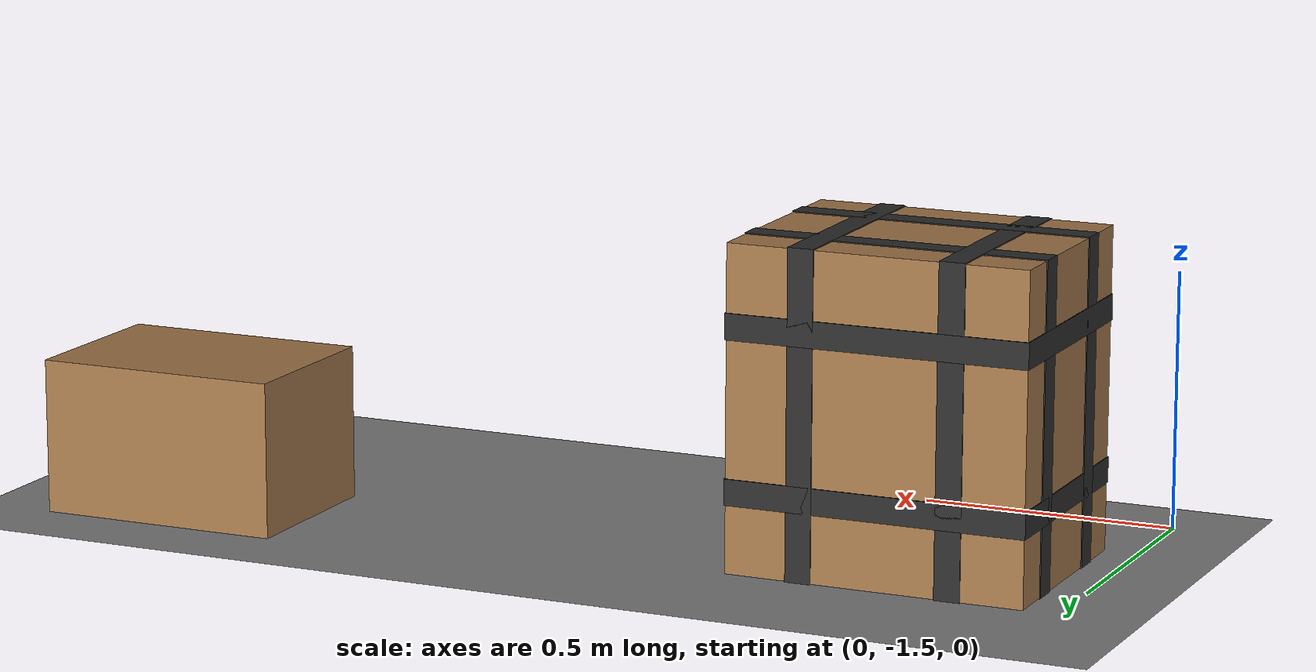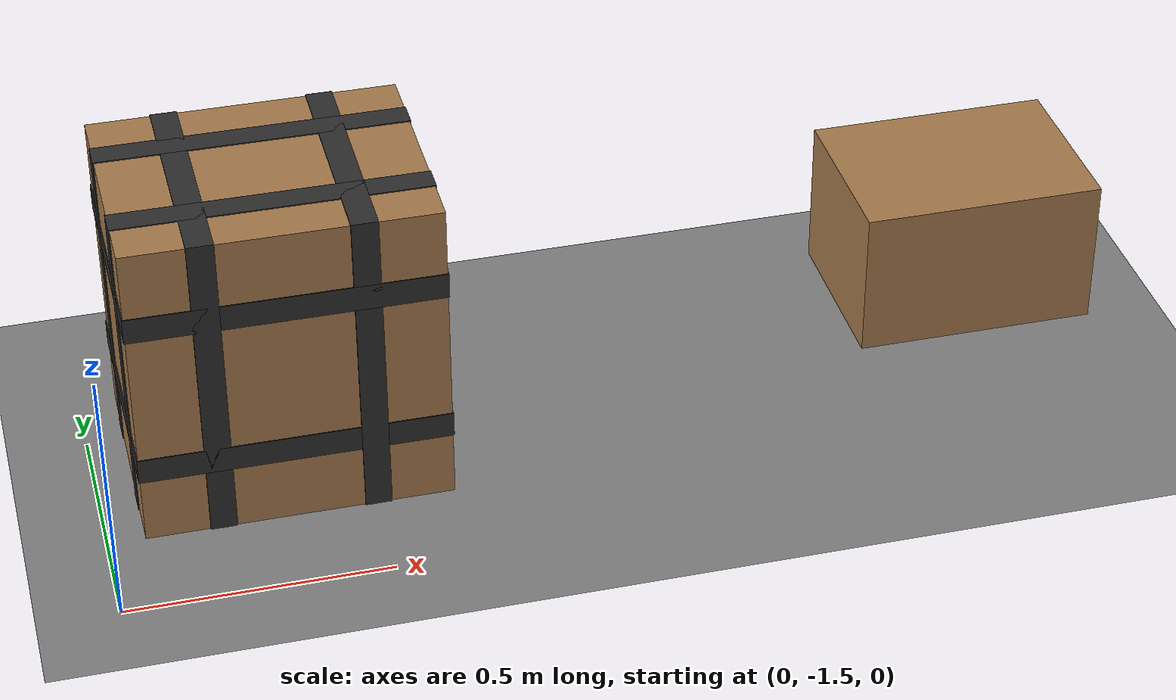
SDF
<sdf version="1.9">
 <world name="ecps295_lowbox_s15_monitor">
  <model name="ground_plane">
   <static>true</static>
   <link name="link">
    <collision name="collision">
     <geometry><plane><normal>0 0 1</normal><size>50 50</size></plane></geometry>
    </collision>
    <visual name="visual">
     <geometry><plane><normal>0 0 1</normal><size>50 50</size></plane></geometry>
     <material><ambient>0.5 0.5 0.5 1</ambient><diffuse>0.5 0.5 0.5 1</diffuse></material>
    </visual>
   </link>
  </model>
  <model name="lb0">
   <static>true</static>
   <pose>0.36 -1.08 0.309 0 0 0</pose>
   <link name="link">
    <collision name="c"><geometry><box><size>0.58 0.45 0.62</size></box></geometry></collision>
    <visual name="v">
     <geometry><box><size>0.58 0.45 0.62</size></box></geometry>
     <material><ambient>0.65 0.48 0.30 1</ambient><diffuse>0.65 0.48 0.30 1</diffuse></material>
    </visual>
    <visual name="tape_ring0">
     <pose>0.000 0.000 -0.155 0 0 0</pose>
     <geometry><box><size>0.584 0.454 0.050</size></box></geometry>
     <material><ambient>0.18 0.18 0.18 1</ambient><diffuse>0.18 0.18 0.18 1</diffuse></material>
    </visual>
    <visual name="tape_bx0">
     <pose>-0.145 0.000 0.000 0 0 0</pose>
     <geometry><box><size>0.050 0.454 0.624</size></box></geometry>
     <material><ambient>0.18 0.18 0.18 1</ambient><diffuse>0.18 0.18 0.18 1</diffuse></material>
    </visual>
    <visual name="tape_by0">
     <pose>0.000 -0.113 0.000 0 0 0</pose>
     <geometry><box><size>0.584 0.050 0.624</size></box></geometry>
     <material><ambient>0.18 0.18 0.18 1</ambient><diffuse>0.18 0.18 0.18 1</diffuse></material>
    </visual>
    <visual name="tape_ring1">
     <pose>0.000 0.000 0.155 0 0 0</pose>
     <geometry><box><size>0.584 0.454 0.050</size></box></geometry>
     <material><ambient>0.18 0.18 0.18 1</ambient><diffuse>0.18 0.18 0.18 1</diffuse></material>
    </visual>
    <visual name="tape_bx1">
     <pose>0.145 0.000 0.000 0 0 0</pose>
     <geometry><box><size>0.050 0.454 0.624</size></box></geometry>
     <material><ambient>0.18 0.18 0.18 1</ambient><diffuse>0.18 0.18 0.18 1</diffuse></material>
    </visual>
    <visual name="tape_by1">
     <pose>0.000 0.113 0.000 0 0 0</pose>
     <geometry><box><size>0.584 0.050 0.624</size></box></geometry>
     <material><ambient>0.18 0.18 0.18 1</ambient><diffuse>0.18 0.18 0.18 1</diffuse></material>
    </visual>
   </link>
  </model>
  <model name="lb5">
   <static>true</static>
   <pose>1.77 -0.89 0.149 0 0 0</pose>
   <link name="link">
    <collision name="c"><geometry><box><size>0.48 0.35 0.3</size></box></geometry></collision>
    <visual name="v">
     <geometry><box><size>0.48 0.35 0.3</size></box></geometry>
     <material><ambient>0.65 0.48 0.30 1</ambient><diffuse>0.65 0.48 0.30 1</diffuse></material>
    </visual>
   </link>
  </model>
 </world>
</sdf>
